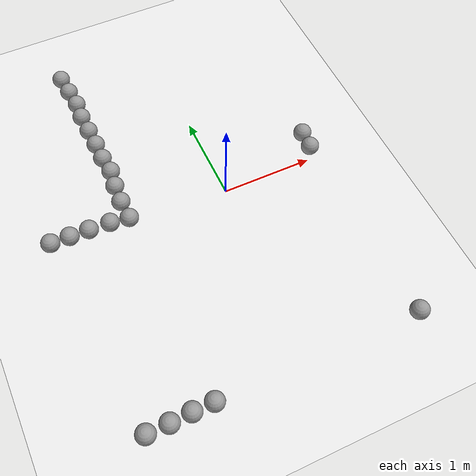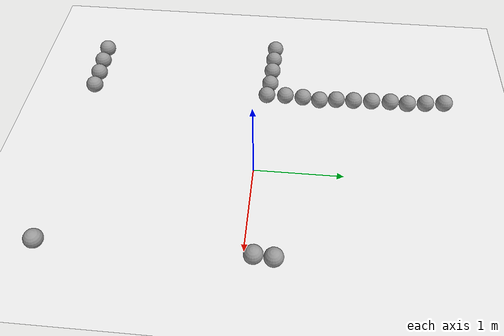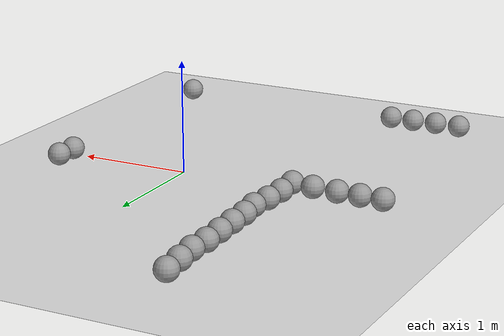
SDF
<sdf version="1.7">
 <world name="default">
  <model name="ground_plane">
   <static>1</static>
   <link name="link">
    <collision name="collision">
     <geometry><plane><normal>0 0 1</normal><size>100 100</size></plane></geometry>
     <surface>
      <contact><collide_bitmask>65535</collide_bitmask></contact>
      <friction><ode><mu>100</mu><mu2>50</mu2></ode></friction>
     </surface>
    </collision>
    <visual name="visual">
     <cast_shadows>0</cast_shadows>
     <geometry><plane><normal>0 0 1</normal><size>100 100</size></plane></geometry>
     <material>
      <script><uri>file://media/materials/scripts/gazebo.material</uri><name>Gazebo/White</name></script>
     </material>
    </visual>
   </link>
  </model>
  <model name="sphere_15">
   <link name="link_0">
    <inertial>
     <mass>1</mass>
     <inertia><ixx>0.1</ixx><ixy>0</ixy><ixz>0</ixz><iyy>0.1</iyy><iyz>0</iyz><izz>0.1</izz></inertia>
    </inertial>
    <visual name="visual">
     <geometry><sphere><radius>0.1</radius></sphere></geometry>
     <material>
      <lighting>1</lighting>
      <script><uri>file://media/materials/scripts/gazebo.material</uri><name>Gazebo/Grey</name></script>
      <shader type="pixel"><normal_map>__default__</normal_map></shader>
      <ambient>0.3 0.3 0.3 1</ambient>
      <diffuse>0.7 0.7 0.7 1</diffuse>
      <specular>0.01 0.01 0.01 1</specular>
      <emissive>0 0 0 1</emissive>
     </material>
    </visual>
    <collision name="collision">
     <geometry><sphere><radius>0.1</radius></sphere></geometry>
     <surface>
      <friction>
       <ode><mu>1</mu><mu2>1</mu2><fdir1>0 0 0</fdir1><slip1>0</slip1><slip2>0</slip2></ode>
       <torsional>
        <coefficient>1</coefficient>
        <patch_radius>0</patch_radius>
        <surface_radius>0</surface_radius>
        <use_patch_radius>1</use_patch_radius>
        <ode><slip>0</slip></ode>
       </torsional>
      </friction>
      <bounce><restitution_coefficient>0</restitution_coefficient><threshold>1e+06</threshold></bounce>
      <contact>
       <collide_without_contact>0</collide_without_contact>
       <collide_without_contact_bitmask>1</collide_without_contact_bitmask>
       <collide_bitmask>1</collide_bitmask>
       <ode>
        <soft_cfm>0</soft_cfm>
        <soft_erp>0.2</soft_erp>
        <kp>1e+13</kp>
        <kd>1</kd>
        <max_vel>0.01</max_vel>
        <min_depth>0</min_depth>
       </ode>
       <bullet>
        <split_impulse>1</split_impulse>
        <split_impulse_penetration_threshold>-0.01</split_impulse_penetration_threshold>
        <soft_cfm>0</soft_cfm>
        <soft_erp>0.2</soft_erp>
        <kp>1e+13</kp>
        <kd>1</kd>
       </bullet>
      </contact>
     </surface>
    </collision>
   </link>
   <static>0</static>
   <pose>-1.07546 -2.08235 0.1 -0.059386 0.004875 0.000548</pose>
  </model>
  <model name="sphere_16">
   <link name="link_0">
    <inertial>
     <mass>1</mass>
     <inertia><ixx>0.1</ixx><ixy>0</ixy><ixz>0</ixz><iyy>0.1</iyy><iyz>0</iyz><izz>0.1</izz></inertia>
    </inertial>
    <visual name="visual">
     <geometry><sphere><radius>0.1</radius></sphere></geometry>
     <material>
      <lighting>1</lighting>
      <script><uri>file://media/materials/scripts/gazebo.material</uri><name>Gazebo/Grey</name></script>
      <shader type="pixel"><normal_map>__default__</normal_map></shader>
      <ambient>0.3 0.3 0.3 1</ambient>
      <diffuse>0.7 0.7 0.7 1</diffuse>
      <specular>0.01 0.01 0.01 1</specular>
      <emissive>0 0 0 1</emissive>
     </material>
    </visual>
    <collision name="collision">
     <geometry><sphere><radius>0.1</radius></sphere></geometry>
     <surface>
      <friction>
       <ode><mu>1</mu><mu2>1</mu2><fdir1>0 0 0</fdir1><slip1>0</slip1><slip2>0</slip2></ode>
       <torsional>
        <coefficient>1</coefficient>
        <patch_radius>0</patch_radius>
        <surface_radius>0</surface_radius>
        <use_patch_radius>1</use_patch_radius>
        <ode><slip>0</slip></ode>
       </torsional>
      </friction>
      <bounce><restitution_coefficient>0</restitution_coefficient><threshold>1e+06</threshold></bounce>
      <contact>
       <collide_without_contact>0</collide_without_contact>
       <collide_without_contact_bitmask>1</collide_without_contact_bitmask>
       <collide_bitmask>1</collide_bitmask>
       <ode>
        <soft_cfm>0</soft_cfm>
        <soft_erp>0.2</soft_erp>
        <kp>1e+13</kp>
        <kd>1</kd>
        <max_vel>0.01</max_vel>
        <min_depth>0</min_depth>
       </ode>
       <bullet>
        <split_impulse>1</split_impulse>
        <split_impulse_penetration_threshold>-0.01</split_impulse_penetration_threshold>
        <soft_cfm>0</soft_cfm>
        <soft_erp>0.2</soft_erp>
        <kp>1e+13</kp>
        <kd>1</kd>
       </bullet>
      </contact>
     </surface>
    </collision>
   </link>
   <static>0</static>
   <pose>-1.29829 -2.0832 0.1 0 -0 0</pose>
  </model>
  <model name="sphere_17">
   <link name="link_0">
    <inertial>
     <mass>1</mass>
     <inertia><ixx>0.1</ixx><ixy>0</ixy><ixz>0</ixz><iyy>0.1</iyy><iyz>0</iyz><izz>0.1</izz></inertia>
    </inertial>
    <visual name="visual">
     <geometry><sphere><radius>0.1</radius></sphere></geometry>
     <material>
      <lighting>1</lighting>
      <script><uri>file://media/materials/scripts/gazebo.material</uri><name>Gazebo/Grey</name></script>
      <shader type="pixel"><normal_map>__default__</normal_map></shader>
      <ambient>0.3 0.3 0.3 1</ambient>
      <diffuse>0.7 0.7 0.7 1</diffuse>
      <specular>0.01 0.01 0.01 1</specular>
      <emissive>0 0 0 1</emissive>
     </material>
    </visual>
    <collision name="collision">
     <geometry><sphere><radius>0.1</radius></sphere></geometry>
     <surface>
      <friction>
       <ode><mu>1</mu><mu2>1</mu2><fdir1>0 0 0</fdir1><slip1>0</slip1><slip2>0</slip2></ode>
       <torsional>
        <coefficient>1</coefficient>
        <patch_radius>0</patch_radius>
        <surface_radius>0</surface_radius>
        <use_patch_radius>1</use_patch_radius>
        <ode><slip>0</slip></ode>
       </torsional>
      </friction>
      <bounce><restitution_coefficient>0</restitution_coefficient><threshold>1e+06</threshold></bounce>
      <contact>
       <collide_without_contact>0</collide_without_contact>
       <collide_without_contact_bitmask>1</collide_without_contact_bitmask>
       <collide_bitmask>1</collide_bitmask>
       <ode>
        <soft_cfm>0</soft_cfm>
        <soft_erp>0.2</soft_erp>
        <kp>1e+13</kp>
        <kd>1</kd>
        <max_vel>0.01</max_vel>
        <min_depth>0</min_depth>
       </ode>
       <bullet>
        <split_impulse>1</split_impulse>
        <split_impulse_penetration_threshold>-0.01</split_impulse_penetration_threshold>
        <soft_cfm>0</soft_cfm>
        <soft_erp>0.2</soft_erp>
        <kp>1e+13</kp>
        <kd>1</kd>
       </bullet>
      </contact>
     </surface>
    </collision>
   </link>
   <static>0</static>
   <pose>-1.52046 -2.09272 0.1 0 -0 0</pose>
  </model>
  <model name="sphere_18">
   <link name="link_0">
    <inertial>
     <mass>1</mass>
     <inertia><ixx>0.1</ixx><ixy>0</ixy><ixz>0</ixz><iyy>0.1</iyy><iyz>0</iyz><izz>0.1</izz></inertia>
    </inertial>
    <visual name="visual">
     <geometry><sphere><radius>0.1</radius></sphere></geometry>
     <material>
      <lighting>1</lighting>
      <script><uri>file://media/materials/scripts/gazebo.material</uri><name>Gazebo/Grey</name></script>
      <shader type="pixel"><normal_map>__default__</normal_map></shader>
      <ambient>0.3 0.3 0.3 1</ambient>
      <diffuse>0.7 0.7 0.7 1</diffuse>
      <specular>0.01 0.01 0.01 1</specular>
      <emissive>0 0 0 1</emissive>
     </material>
    </visual>
    <collision name="collision">
     <geometry><sphere><radius>0.1</radius></sphere></geometry>
     <surface>
      <friction>
       <ode><mu>1</mu><mu2>1</mu2><fdir1>0 0 0</fdir1><slip1>0</slip1><slip2>0</slip2></ode>
       <torsional>
        <coefficient>1</coefficient>
        <patch_radius>0</patch_radius>
        <surface_radius>0</surface_radius>
        <use_patch_radius>1</use_patch_radius>
        <ode><slip>0</slip></ode>
       </torsional>
      </friction>
      <bounce><restitution_coefficient>0</restitution_coefficient><threshold>1e+06</threshold></bounce>
      <contact>
       <collide_without_contact>0</collide_without_contact>
       <collide_without_contact_bitmask>1</collide_without_contact_bitmask>
       <collide_bitmask>1</collide_bitmask>
       <ode>
        <soft_cfm>0</soft_cfm>
        <soft_erp>0.2</soft_erp>
        <kp>1e+13</kp>
        <kd>1</kd>
        <max_vel>0.01</max_vel>
        <min_depth>0</min_depth>
       </ode>
       <bullet>
        <split_impulse>1</split_impulse>
        <split_impulse_penetration_threshold>-0.01</split_impulse_penetration_threshold>
        <soft_cfm>0</soft_cfm>
        <soft_erp>0.2</soft_erp>
        <kp>1e+13</kp>
        <kd>1</kd>
       </bullet>
      </contact>
     </surface>
    </collision>
   </link>
   <static>0</static>
   <pose>-1.75031 -2.09462 0.1 0 -0 0</pose>
  </model>
  <model name="sphere_33">
   <link name="link_0">
    <inertial>
     <mass>1</mass>
     <inertia><ixx>0.1</ixx><ixy>0</ixy><ixz>0</ixz><iyy>0.1</iyy><iyz>0</iyz><izz>0.1</izz></inertia>
    </inertial>
    <visual name="visual">
     <geometry><sphere><radius>0.1</radius></sphere></geometry>
     <material>
      <lighting>1</lighting>
      <script><uri>file://media/materials/scripts/gazebo.material</uri><name>Gazebo/Grey</name></script>
      <shader type="pixel"><normal_map>__default__</normal_map></shader>
      <ambient>0.3 0.3 0.3 1</ambient>
      <diffuse>0.7 0.7 0.7 1</diffuse>
      <specular>0.01 0.01 0.01 1</specular>
      <emissive>0 0 0 1</emissive>
     </material>
    </visual>
    <collision name="collision">
     <geometry><sphere><radius>0.1</radius></sphere></geometry>
     <surface>
      <friction>
       <ode><mu>1</mu><mu2>1</mu2><fdir1>0 0 0</fdir1><slip1>0</slip1><slip2>0</slip2></ode>
       <torsional>
        <coefficient>1</coefficient>
        <patch_radius>0</patch_radius>
        <surface_radius>0</surface_radius>
        <use_patch_radius>1</use_patch_radius>
        <ode><slip>0</slip></ode>
       </torsional>
      </friction>
      <bounce><restitution_coefficient>0</restitution_coefficient><threshold>1e+06</threshold></bounce>
      <contact>
       <collide_without_contact>0</collide_without_contact>
       <collide_without_contact_bitmask>1</collide_without_contact_bitmask>
       <collide_bitmask>1</collide_bitmask>
       <ode>
        <soft_cfm>0</soft_cfm>
        <soft_erp>0.2</soft_erp>
        <kp>1e+13</kp>
        <kd>1</kd>
        <max_vel>0.01</max_vel>
        <min_depth>0</min_depth>
       </ode>
       <bullet>
        <split_impulse>1</split_impulse>
        <split_impulse_penetration_threshold>-0.01</split_impulse_penetration_threshold>
        <soft_cfm>0</soft_cfm>
        <soft_erp>0.2</soft_erp>
        <kp>1e+13</kp>
        <kd>1</kd>
       </bullet>
      </contact>
     </surface>
    </collision>
   </link>
   <static>0</static>
   <pose>1.09596 -2.09176 0.1 -0.053944 -0.003381 -0.000948</pose>
  </model>
  <model name="sphere_62">
   <link name="link_0">
    <inertial>
     <mass>1</mass>
     <inertia><ixx>0.1</ixx><ixy>0</ixy><ixz>0</ixz><iyy>0.1</iyy><iyz>0</iyz><izz>0.1</izz></inertia>
    </inertial>
    <visual name="visual">
     <geometry><sphere><radius>0.1</radius></sphere></geometry>
     <material>
      <lighting>1</lighting>
      <script><uri>file://media/materials/scripts/gazebo.material</uri><name>Gazebo/Grey</name></script>
      <shader type="pixel"><normal_map>__default__</normal_map></shader>
      <ambient>0.3 0.3 0.3 1</ambient>
      <diffuse>0.7 0.7 0.7 1</diffuse>
      <specular>0.01 0.01 0.01 1</specular>
      <emissive>0 0 0 1</emissive>
     </material>
    </visual>
    <collision name="collision">
     <geometry><sphere><radius>0.1</radius></sphere></geometry>
     <surface>
      <friction>
       <ode><mu>1</mu><mu2>1</mu2><fdir1>0 0 0</fdir1><slip1>0</slip1><slip2>0</slip2></ode>
       <torsional>
        <coefficient>1</coefficient>
        <patch_radius>0</patch_radius>
        <surface_radius>0</surface_radius>
        <use_patch_radius>1</use_patch_radius>
        <ode><slip>0</slip></ode>
       </torsional>
      </friction>
      <bounce><restitution_coefficient>0</restitution_coefficient><threshold>1e+06</threshold></bounce>
      <contact>
       <collide_without_contact>0</collide_without_contact>
       <collide_without_contact_bitmask>1</collide_without_contact_bitmask>
       <collide_bitmask>1</collide_bitmask>
       <ode>
        <soft_cfm>0</soft_cfm>
        <soft_erp>0.2</soft_erp>
        <kp>1e+13</kp>
        <kd>1</kd>
        <max_vel>0.01</max_vel>
        <min_depth>0</min_depth>
       </ode>
       <bullet>
        <split_impulse>1</split_impulse>
        <split_impulse_penetration_threshold>-0.01</split_impulse_penetration_threshold>
        <soft_cfm>0</soft_cfm>
        <soft_erp>0.2</soft_erp>
        <kp>1e+13</kp>
        <kd>1</kd>
       </bullet>
      </contact>
     </surface>
    </collision>
   </link>
   <static>0</static>
   <pose>1.07641 0.101942 0.1 0 -0 0</pose>
  </model>
  <model name="sphere_74">
   <link name="link_0">
    <inertial>
     <mass>1</mass>
     <inertia><ixx>0.1</ixx><ixy>0</ixy><ixz>0</ixz><iyy>0.1</iyy><iyz>0</iyz><izz>0.1</izz></inertia>
    </inertial>
    <visual name="visual">
     <geometry><sphere><radius>0.1</radius></sphere></geometry>
     <material>
      <lighting>1</lighting>
      <script><uri>file://media/materials/scripts/gazebo.material</uri><name>Gazebo/Grey</name></script>
      <shader type="pixel"><normal_map>__default__</normal_map></shader>
      <ambient>0.3 0.3 0.3 1</ambient>
      <diffuse>0.7 0.7 0.7 1</diffuse>
      <specular>0.01 0.01 0.01 1</specular>
      <emissive>0 0 0 1</emissive>
     </material>
    </visual>
    <collision name="collision">
     <geometry><sphere><radius>0.1</radius></sphere></geometry>
     <surface>
      <friction>
       <ode><mu>1</mu><mu2>1</mu2><fdir1>0 0 0</fdir1><slip1>0</slip1><slip2>0</slip2></ode>
       <torsional>
        <coefficient>1</coefficient>
        <patch_radius>0</patch_radius>
        <surface_radius>0</surface_radius>
        <use_patch_radius>1</use_patch_radius>
        <ode><slip>0</slip></ode>
       </torsional>
      </friction>
      <bounce><restitution_coefficient>0</restitution_coefficient><threshold>1e+06</threshold></bounce>
      <contact>
       <collide_without_contact>0</collide_without_contact>
       <collide_without_contact_bitmask>1</collide_without_contact_bitmask>
       <collide_bitmask>1</collide_bitmask>
       <ode>
        <soft_cfm>0</soft_cfm>
        <soft_erp>0.2</soft_erp>
        <kp>1e+13</kp>
        <kd>1</kd>
        <max_vel>0.01</max_vel>
        <min_depth>0</min_depth>
       </ode>
       <bullet>
        <split_impulse>1</split_impulse>
        <split_impulse_penetration_threshold>-0.01</split_impulse_penetration_threshold>
        <soft_cfm>0</soft_cfm>
        <soft_erp>0.2</soft_erp>
        <kp>1e+13</kp>
        <kd>1</kd>
       </bullet>
      </contact>
     </surface>
    </collision>
   </link>
   <static>0</static>
   <pose>1.08893 0.304027 0.1 0.017206 -0.001011 -0.000165</pose>
  </model>
  <model name="sphere_85">
   <link name="link_0">
    <inertial>
     <mass>1</mass>
     <inertia><ixx>0.1</ixx><ixy>0</ixy><ixz>0</ixz><iyy>0.1</iyy><iyz>0</iyz><izz>0.1</izz></inertia>
    </inertial>
    <visual name="visual">
     <geometry><sphere><radius>0.1</radius></sphere></geometry>
     <material>
      <lighting>1</lighting>
      <script><uri>file://media/materials/scripts/gazebo.material</uri><name>Gazebo/Grey</name></script>
      <shader type="pixel"><normal_map>__default__</normal_map></shader>
      <ambient>0.3 0.3 0.3 1</ambient>
      <diffuse>0.7 0.7 0.7 1</diffuse>
      <specular>0.01 0.01 0.01 1</specular>
      <emissive>0 0 0 1</emissive>
     </material>
    </visual>
    <collision name="collision">
     <geometry><sphere><radius>0.1</radius></sphere></geometry>
     <surface>
      <friction>
       <ode><mu>1</mu><mu2>1</mu2><fdir1>0 0 0</fdir1><slip1>0</slip1><slip2>0</slip2></ode>
       <torsional>
        <coefficient>1</coefficient>
        <patch_radius>0</patch_radius>
        <surface_radius>0</surface_radius>
        <use_patch_radius>1</use_patch_radius>
        <ode><slip>0</slip></ode>
       </torsional>
      </friction>
      <bounce><restitution_coefficient>0</restitution_coefficient><threshold>1e+06</threshold></bounce>
      <contact>
       <collide_without_contact>0</collide_without_contact>
       <collide_without_contact_bitmask>1</collide_without_contact_bitmask>
       <collide_bitmask>1</collide_bitmask>
       <ode>
        <soft_cfm>0</soft_cfm>
        <soft_erp>0.2</soft_erp>
        <kp>1e+13</kp>
        <kd>1</kd>
        <max_vel>0.01</max_vel>
        <min_depth>0</min_depth>
       </ode>
       <bullet>
        <split_impulse>1</split_impulse>
        <split_impulse_penetration_threshold>-0.01</split_impulse_penetration_threshold>
        <soft_cfm>0</soft_cfm>
        <soft_erp>0.2</soft_erp>
        <kp>1e+13</kp>
        <kd>1</kd>
       </bullet>
      </contact>
     </surface>
    </collision>
   </link>
   <static>0</static>
   <pose>-1.08222 0.064075 0.1 0.005987 0.035998 0.001365</pose>
  </model>
  <model name="sphere_86">
   <link name="link_0">
    <inertial>
     <mass>1</mass>
     <inertia><ixx>0.1</ixx><ixy>0</ixy><ixz>0</ixz><iyy>0.1</iyy><iyz>0</iyz><izz>0.1</izz></inertia>
    </inertial>
    <visual name="visual">
     <geometry><sphere><radius>0.1</radius></sphere></geometry>
     <material>
      <lighting>1</lighting>
      <script><uri>file://media/materials/scripts/gazebo.material</uri><name>Gazebo/Grey</name></script>
      <shader type="pixel"><normal_map>__default__</normal_map></shader>
      <ambient>0.3 0.3 0.3 1</ambient>
      <diffuse>0.7 0.7 0.7 1</diffuse>
      <specular>0.01 0.01 0.01 1</specular>
      <emissive>0 0 0 1</emissive>
     </material>
    </visual>
    <collision name="collision">
     <geometry><sphere><radius>0.1</radius></sphere></geometry>
     <surface>
      <friction>
       <ode><mu>1</mu><mu2>1</mu2><fdir1>0 0 0</fdir1><slip1>0</slip1><slip2>0</slip2></ode>
       <torsional>
        <coefficient>1</coefficient>
        <patch_radius>0</patch_radius>
        <surface_radius>0</surface_radius>
        <use_patch_radius>1</use_patch_radius>
        <ode><slip>0</slip></ode>
       </torsional>
      </friction>
      <bounce><restitution_coefficient>0</restitution_coefficient><threshold>1e+06</threshold></bounce>
      <contact>
       <collide_without_contact>0</collide_without_contact>
       <collide_without_contact_bitmask>1</collide_without_contact_bitmask>
       <collide_bitmask>1</collide_bitmask>
       <ode>
        <soft_cfm>0</soft_cfm>
        <soft_erp>0.2</soft_erp>
        <kp>1e+13</kp>
        <kd>1</kd>
        <max_vel>0.01</max_vel>
        <min_depth>0</min_depth>
       </ode>
       <bullet>
        <split_impulse>1</split_impulse>
        <split_impulse_penetration_threshold>-0.01</split_impulse_penetration_threshold>
        <soft_cfm>0</soft_cfm>
        <soft_erp>0.2</soft_erp>
        <kp>1e+13</kp>
        <kd>1</kd>
       </bullet>
      </contact>
     </surface>
    </collision>
   </link>
   <static>0</static>
   <pose>-1.28551 0.091382 0.1 -0.006611 -0.040727 0.001393</pose>
  </model>
  <model name="sphere_87">
   <link name="link_0">
    <inertial>
     <mass>1</mass>
     <inertia><ixx>0.1</ixx><ixy>0</ixy><ixz>0</ixz><iyy>0.1</iyy><iyz>0</iyz><izz>0.1</izz></inertia>
    </inertial>
    <visual name="visual">
     <geometry><sphere><radius>0.1</radius></sphere></geometry>
     <material>
      <lighting>1</lighting>
      <script><uri>file://media/materials/scripts/gazebo.material</uri><name>Gazebo/Grey</name></script>
      <shader type="pixel"><normal_map>__default__</normal_map></shader>
      <ambient>0.3 0.3 0.3 1</ambient>
      <diffuse>0.7 0.7 0.7 1</diffuse>
      <specular>0.01 0.01 0.01 1</specular>
      <emissive>0 0 0 1</emissive>
     </material>
    </visual>
    <collision name="collision">
     <geometry><sphere><radius>0.1</radius></sphere></geometry>
     <surface>
      <friction>
       <ode><mu>1</mu><mu2>1</mu2><fdir1>0 0 0</fdir1><slip1>0</slip1><slip2>0</slip2></ode>
       <torsional>
        <coefficient>1</coefficient>
        <patch_radius>0</patch_radius>
        <surface_radius>0</surface_radius>
        <use_patch_radius>1</use_patch_radius>
        <ode><slip>0</slip></ode>
       </torsional>
      </friction>
      <bounce><restitution_coefficient>0</restitution_coefficient><threshold>1e+06</threshold></bounce>
      <contact>
       <collide_without_contact>0</collide_without_contact>
       <collide_without_contact_bitmask>1</collide_without_contact_bitmask>
       <collide_bitmask>1</collide_bitmask>
       <ode>
        <soft_cfm>0</soft_cfm>
        <soft_erp>0.2</soft_erp>
        <kp>1e+13</kp>
        <kd>1</kd>
        <max_vel>0.01</max_vel>
        <min_depth>0</min_depth>
       </ode>
       <bullet>
        <split_impulse>1</split_impulse>
        <split_impulse_penetration_threshold>-0.01</split_impulse_penetration_threshold>
        <soft_cfm>0</soft_cfm>
        <soft_erp>0.2</soft_erp>
        <kp>1e+13</kp>
        <kd>1</kd>
       </bullet>
      </contact>
     </surface>
    </collision>
   </link>
   <static>0</static>
   <pose>-1.51169 0.101938 0.1 0 -0 0</pose>
  </model>
  <model name="sphere_88">
   <link name="link_0">
    <inertial>
     <mass>1</mass>
     <inertia><ixx>0.1</ixx><ixy>0</ixy><ixz>0</ixz><iyy>0.1</iyy><iyz>0</iyz><izz>0.1</izz></inertia>
    </inertial>
    <visual name="visual">
     <geometry><sphere><radius>0.1</radius></sphere></geometry>
     <material>
      <lighting>1</lighting>
      <script><uri>file://media/materials/scripts/gazebo.material</uri><name>Gazebo/Grey</name></script>
      <shader type="pixel"><normal_map>__default__</normal_map></shader>
      <ambient>0.3 0.3 0.3 1</ambient>
      <diffuse>0.7 0.7 0.7 1</diffuse>
      <specular>0.01 0.01 0.01 1</specular>
      <emissive>0 0 0 1</emissive>
     </material>
    </visual>
    <collision name="collision">
     <geometry><sphere><radius>0.1</radius></sphere></geometry>
     <surface>
      <friction>
       <ode><mu>1</mu><mu2>1</mu2><fdir1>0 0 0</fdir1><slip1>0</slip1><slip2>0</slip2></ode>
       <torsional>
        <coefficient>1</coefficient>
        <patch_radius>0</patch_radius>
        <surface_radius>0</surface_radius>
        <use_patch_radius>1</use_patch_radius>
        <ode><slip>0</slip></ode>
       </torsional>
      </friction>
      <bounce><restitution_coefficient>0</restitution_coefficient><threshold>1e+06</threshold></bounce>
      <contact>
       <collide_without_contact>0</collide_without_contact>
       <collide_without_contact_bitmask>1</collide_without_contact_bitmask>
       <collide_bitmask>1</collide_bitmask>
       <ode>
        <soft_cfm>0</soft_cfm>
        <soft_erp>0.2</soft_erp>
        <kp>1e+13</kp>
        <kd>1</kd>
        <max_vel>0.01</max_vel>
        <min_depth>0</min_depth>
       </ode>
       <bullet>
        <split_impulse>1</split_impulse>
        <split_impulse_penetration_threshold>-0.01</split_impulse_penetration_threshold>
        <soft_cfm>0</soft_cfm>
        <soft_erp>0.2</soft_erp>
        <kp>1e+13</kp>
        <kd>1</kd>
       </bullet>
      </contact>
     </surface>
    </collision>
   </link>
   <static>0</static>
   <pose>-1.71901 0.106668 0.1 0.00104 0.032357 0.00026</pose>
  </model>
  <model name="sphere_89">
   <link name="link_0">
    <inertial>
     <mass>1</mass>
     <inertia><ixx>0.1</ixx><ixy>0</ixy><ixz>0</ixz><iyy>0.1</iyy><iyz>0</iyz><izz>0.1</izz></inertia>
    </inertial>
    <visual name="visual">
     <geometry><sphere><radius>0.1</radius></sphere></geometry>
     <material>
      <lighting>1</lighting>
      <script><uri>file://media/materials/scripts/gazebo.material</uri><name>Gazebo/Grey</name></script>
      <shader type="pixel"><normal_map>__default__</normal_map></shader>
      <ambient>0.3 0.3 0.3 1</ambient>
      <diffuse>0.7 0.7 0.7 1</diffuse>
      <specular>0.01 0.01 0.01 1</specular>
      <emissive>0 0 0 1</emissive>
     </material>
    </visual>
    <collision name="collision">
     <geometry><sphere><radius>0.1</radius></sphere></geometry>
     <surface>
      <friction>
       <ode><mu>1</mu><mu2>1</mu2><fdir1>0 0 0</fdir1><slip1>0</slip1><slip2>0</slip2></ode>
       <torsional>
        <coefficient>1</coefficient>
        <patch_radius>0</patch_radius>
        <surface_radius>0</surface_radius>
        <use_patch_radius>1</use_patch_radius>
        <ode><slip>0</slip></ode>
       </torsional>
      </friction>
      <bounce><restitution_coefficient>0</restitution_coefficient><threshold>1e+06</threshold></bounce>
      <contact>
       <collide_without_contact>0</collide_without_contact>
       <collide_without_contact_bitmask>1</collide_without_contact_bitmask>
       <collide_bitmask>1</collide_bitmask>
       <ode>
        <soft_cfm>0</soft_cfm>
        <soft_erp>0.2</soft_erp>
        <kp>1e+13</kp>
        <kd>1</kd>
        <max_vel>0.01</max_vel>
        <min_depth>0</min_depth>
       </ode>
       <bullet>
        <split_impulse>1</split_impulse>
        <split_impulse_penetration_threshold>-0.01</split_impulse_penetration_threshold>
        <soft_cfm>0</soft_cfm>
        <soft_erp>0.2</soft_erp>
        <kp>1e+13</kp>
        <kd>1</kd>
       </bullet>
      </contact>
     </surface>
    </collision>
   </link>
   <static>0</static>
   <pose>-1.924 0.111839 0.1 -0.001156 -0.037218 0.000265</pose>
  </model>
  <model name="sphere_102">
   <link name="link_0">
    <inertial>
     <mass>1</mass>
     <inertia><ixx>0.1</ixx><ixy>0</ixy><ixz>0</ixz><iyy>0.1</iyy><iyz>0</iyz><izz>0.1</izz></inertia>
    </inertial>
    <visual name="visual">
     <geometry><sphere><radius>0.1</radius></sphere></geometry>
     <material>
      <lighting>1</lighting>
      <script><uri>file://media/materials/scripts/gazebo.material</uri><name>Gazebo/Grey</name></script>
      <shader type="pixel"><normal_map>__default__</normal_map></shader>
      <ambient>0.3 0.3 0.3 1</ambient>
      <diffuse>0.7 0.7 0.7 1</diffuse>
      <specular>0.01 0.01 0.01 1</specular>
      <emissive>0 0 0 1</emissive>
     </material>
    </visual>
    <collision name="collision">
     <geometry><sphere><radius>0.1</radius></sphere></geometry>
     <surface>
      <friction>
       <ode><mu>1</mu><mu2>1</mu2><fdir1>0 0 0</fdir1><slip1>0</slip1><slip2>0</slip2></ode>
       <torsional>
        <coefficient>1</coefficient>
        <patch_radius>0</patch_radius>
        <surface_radius>0</surface_radius>
        <use_patch_radius>1</use_patch_radius>
        <ode><slip>0</slip></ode>
       </torsional>
      </friction>
      <bounce><restitution_coefficient>0</restitution_coefficient><threshold>1e+06</threshold></bounce>
      <contact>
       <collide_without_contact>0</collide_without_contact>
       <collide_without_contact_bitmask>1</collide_without_contact_bitmask>
       <collide_bitmask>1</collide_bitmask>
       <ode>
        <soft_cfm>0</soft_cfm>
        <soft_erp>0.2</soft_erp>
        <kp>1e+13</kp>
        <kd>1</kd>
        <max_vel>0.01</max_vel>
        <min_depth>0</min_depth>
       </ode>
       <bullet>
        <split_impulse>1</split_impulse>
        <split_impulse_penetration_threshold>-0.01</split_impulse_penetration_threshold>
        <soft_cfm>0</soft_cfm>
        <soft_erp>0.2</soft_erp>
        <kp>1e+13</kp>
        <kd>1</kd>
       </bullet>
      </contact>
     </surface>
    </collision>
   </link>
   <static>0</static>
   <pose>-1.0919 0.289728 0.1 0 -0 0</pose>
  </model>
  <model name="sphere_103">
   <link name="link_0">
    <inertial>
     <mass>1</mass>
     <inertia><ixx>0.1</ixx><ixy>0</ixy><ixz>0</ixz><iyy>0.1</iyy><iyz>0</iyz><izz>0.1</izz></inertia>
    </inertial>
    <visual name="visual">
     <geometry><sphere><radius>0.1</radius></sphere></geometry>
     <material>
      <lighting>1</lighting>
      <script><uri>file://media/materials/scripts/gazebo.material</uri><name>Gazebo/Grey</name></script>
      <shader type="pixel"><normal_map>__default__</normal_map></shader>
      <ambient>0.3 0.3 0.3 1</ambient>
      <diffuse>0.7 0.7 0.7 1</diffuse>
      <specular>0.01 0.01 0.01 1</specular>
      <emissive>0 0 0 1</emissive>
     </material>
    </visual>
    <collision name="collision">
     <geometry><sphere><radius>0.1</radius></sphere></geometry>
     <surface>
      <friction>
       <ode><mu>1</mu><mu2>1</mu2><fdir1>0 0 0</fdir1><slip1>0</slip1><slip2>0</slip2></ode>
       <torsional>
        <coefficient>1</coefficient>
        <patch_radius>0</patch_radius>
        <surface_radius>0</surface_radius>
        <use_patch_radius>1</use_patch_radius>
        <ode><slip>0</slip></ode>
       </torsional>
      </friction>
      <bounce><restitution_coefficient>0</restitution_coefficient><threshold>1e+06</threshold></bounce>
      <contact>
       <collide_without_contact>0</collide_without_contact>
       <collide_without_contact_bitmask>1</collide_without_contact_bitmask>
       <collide_bitmask>1</collide_bitmask>
       <ode>
        <soft_cfm>0</soft_cfm>
        <soft_erp>0.2</soft_erp>
        <kp>1e+13</kp>
        <kd>1</kd>
        <max_vel>0.01</max_vel>
        <min_depth>0</min_depth>
       </ode>
       <bullet>
        <split_impulse>1</split_impulse>
        <split_impulse_penetration_threshold>-0.01</split_impulse_penetration_threshold>
        <soft_cfm>0</soft_cfm>
        <soft_erp>0.2</soft_erp>
        <kp>1e+13</kp>
        <kd>1</kd>
       </bullet>
      </contact>
     </surface>
    </collision>
   </link>
   <static>0</static>
   <pose>-1.08088 0.503996 0.1 0.074779 -0.002407 -0.007849</pose>
  </model>
  <model name="sphere_104">
   <link name="link_0">
    <inertial>
     <mass>1</mass>
     <inertia><ixx>0.1</ixx><ixy>0</ixy><ixz>0</ixz><iyy>0.1</iyy><iyz>0</iyz><izz>0.1</izz></inertia>
    </inertial>
    <visual name="visual">
     <geometry><sphere><radius>0.1</radius></sphere></geometry>
     <material>
      <lighting>1</lighting>
      <script><uri>file://media/materials/scripts/gazebo.material</uri><name>Gazebo/Grey</name></script>
      <shader type="pixel"><normal_map>__default__</normal_map></shader>
      <ambient>0.3 0.3 0.3 1</ambient>
      <diffuse>0.7 0.7 0.7 1</diffuse>
      <specular>0.01 0.01 0.01 1</specular>
      <emissive>0 0 0 1</emissive>
     </material>
    </visual>
    <collision name="collision">
     <geometry><sphere><radius>0.1</radius></sphere></geometry>
     <surface>
      <friction>
       <ode><mu>1</mu><mu2>1</mu2><fdir1>0 0 0</fdir1><slip1>0</slip1><slip2>0</slip2></ode>
       <torsional>
        <coefficient>1</coefficient>
        <patch_radius>0</patch_radius>
        <surface_radius>0</surface_radius>
        <use_patch_radius>1</use_patch_radius>
        <ode><slip>0</slip></ode>
       </torsional>
      </friction>
      <bounce><restitution_coefficient>0</restitution_coefficient><threshold>1e+06</threshold></bounce>
      <contact>
       <collide_without_contact>0</collide_without_contact>
       <collide_without_contact_bitmask>1</collide_without_contact_bitmask>
       <collide_bitmask>1</collide_bitmask>
       <ode>
        <soft_cfm>0</soft_cfm>
        <soft_erp>0.2</soft_erp>
        <kp>1e+13</kp>
        <kd>1</kd>
        <max_vel>0.01</max_vel>
        <min_depth>0</min_depth>
       </ode>
       <bullet>
        <split_impulse>1</split_impulse>
        <split_impulse_penetration_threshold>-0.01</split_impulse_penetration_threshold>
        <soft_cfm>0</soft_cfm>
        <soft_erp>0.2</soft_erp>
        <kp>1e+13</kp>
        <kd>1</kd>
       </bullet>
      </contact>
     </surface>
    </collision>
   </link>
   <static>0</static>
   <pose>-1.0546 0.705935 0.1 -0.009174 0.012827 0.001698</pose>
  </model>
  <model name="sphere_105">
   <link name="link_0">
    <inertial>
     <mass>1</mass>
     <inertia><ixx>0.1</ixx><ixy>0</ixy><ixz>0</ixz><iyy>0.1</iyy><iyz>0</iyz><izz>0.1</izz></inertia>
    </inertial>
    <visual name="visual">
     <geometry><sphere><radius>0.1</radius></sphere></geometry>
     <material>
      <lighting>1</lighting>
      <script><uri>file://media/materials/scripts/gazebo.material</uri><name>Gazebo/Grey</name></script>
      <shader type="pixel"><normal_map>__default__</normal_map></shader>
      <ambient>0.3 0.3 0.3 1</ambient>
      <diffuse>0.7 0.7 0.7 1</diffuse>
      <specular>0.01 0.01 0.01 1</specular>
      <emissive>0 0 0 1</emissive>
     </material>
    </visual>
    <collision name="collision">
     <geometry><sphere><radius>0.1</radius></sphere></geometry>
     <surface>
      <friction>
       <ode><mu>1</mu><mu2>1</mu2><fdir1>0 0 0</fdir1><slip1>0</slip1><slip2>0</slip2></ode>
       <torsional>
        <coefficient>1</coefficient>
        <patch_radius>0</patch_radius>
        <surface_radius>0</surface_radius>
        <use_patch_radius>1</use_patch_radius>
        <ode><slip>0</slip></ode>
       </torsional>
      </friction>
      <bounce><restitution_coefficient>0</restitution_coefficient><threshold>1e+06</threshold></bounce>
      <contact>
       <collide_without_contact>0</collide_without_contact>
       <collide_without_contact_bitmask>1</collide_without_contact_bitmask>
       <collide_bitmask>1</collide_bitmask>
       <ode>
        <soft_cfm>0</soft_cfm>
        <soft_erp>0.2</soft_erp>
        <kp>1e+13</kp>
        <kd>1</kd>
        <max_vel>0.01</max_vel>
        <min_depth>0</min_depth>
       </ode>
       <bullet>
        <split_impulse>1</split_impulse>
        <split_impulse_penetration_threshold>-0.01</split_impulse_penetration_threshold>
        <soft_cfm>0</soft_cfm>
        <soft_erp>0.2</soft_erp>
        <kp>1e+13</kp>
        <kd>1</kd>
       </bullet>
      </contact>
     </surface>
    </collision>
   </link>
   <static>0</static>
   <pose>-1.07724 0.908326 0.1 -0.055259 0.002793 0.00933</pose>
  </model>
  <model name="sphere_106">
   <link name="link_0">
    <inertial>
     <mass>1</mass>
     <inertia><ixx>0.1</ixx><ixy>0</ixy><ixz>0</ixz><iyy>0.1</iyy><iyz>0</iyz><izz>0.1</izz></inertia>
    </inertial>
    <visual name="visual">
     <geometry><sphere><radius>0.1</radius></sphere></geometry>
     <material>
      <lighting>1</lighting>
      <script><uri>file://media/materials/scripts/gazebo.material</uri><name>Gazebo/Grey</name></script>
      <shader type="pixel"><normal_map>__default__</normal_map></shader>
      <ambient>0.3 0.3 0.3 1</ambient>
      <diffuse>0.7 0.7 0.7 1</diffuse>
      <specular>0.01 0.01 0.01 1</specular>
      <emissive>0 0 0 1</emissive>
     </material>
    </visual>
    <collision name="collision">
     <geometry><sphere><radius>0.1</radius></sphere></geometry>
     <surface>
      <friction>
       <ode><mu>1</mu><mu2>1</mu2><fdir1>0 0 0</fdir1><slip1>0</slip1><slip2>0</slip2></ode>
       <torsional>
        <coefficient>1</coefficient>
        <patch_radius>0</patch_radius>
        <surface_radius>0</surface_radius>
        <use_patch_radius>1</use_patch_radius>
        <ode><slip>0</slip></ode>
       </torsional>
      </friction>
      <bounce><restitution_coefficient>0</restitution_coefficient><threshold>1e+06</threshold></bounce>
      <contact>
       <collide_without_contact>0</collide_without_contact>
       <collide_without_contact_bitmask>1</collide_without_contact_bitmask>
       <collide_bitmask>1</collide_bitmask>
       <ode>
        <soft_cfm>0</soft_cfm>
        <soft_erp>0.2</soft_erp>
        <kp>1e+13</kp>
        <kd>1</kd>
        <max_vel>0.01</max_vel>
        <min_depth>0</min_depth>
       </ode>
       <bullet>
        <split_impulse>1</split_impulse>
        <split_impulse_penetration_threshold>-0.01</split_impulse_penetration_threshold>
        <soft_cfm>0</soft_cfm>
        <soft_erp>0.2</soft_erp>
        <kp>1e+13</kp>
        <kd>1</kd>
       </bullet>
      </contact>
     </surface>
    </collision>
   </link>
   <static>0</static>
   <pose>-1.08076 1.1176 0.1 0 -0 0</pose>
  </model>
  <model name="sphere_107">
   <link name="link_0">
    <inertial>
     <mass>1</mass>
     <inertia><ixx>0.1</ixx><ixy>0</ixy><ixz>0</ixz><iyy>0.1</iyy><iyz>0</iyz><izz>0.1</izz></inertia>
    </inertial>
    <visual name="visual">
     <geometry><sphere><radius>0.1</radius></sphere></geometry>
     <material>
      <lighting>1</lighting>
      <script><uri>file://media/materials/scripts/gazebo.material</uri><name>Gazebo/Grey</name></script>
      <shader type="pixel"><normal_map>__default__</normal_map></shader>
      <ambient>0.3 0.3 0.3 1</ambient>
      <diffuse>0.7 0.7 0.7 1</diffuse>
      <specular>0.01 0.01 0.01 1</specular>
      <emissive>0 0 0 1</emissive>
     </material>
    </visual>
    <collision name="collision">
     <geometry><sphere><radius>0.1</radius></sphere></geometry>
     <surface>
      <friction>
       <ode><mu>1</mu><mu2>1</mu2><fdir1>0 0 0</fdir1><slip1>0</slip1><slip2>0</slip2></ode>
       <torsional>
        <coefficient>1</coefficient>
        <patch_radius>0</patch_radius>
        <surface_radius>0</surface_radius>
        <use_patch_radius>1</use_patch_radius>
        <ode><slip>0</slip></ode>
       </torsional>
      </friction>
      <bounce><restitution_coefficient>0</restitution_coefficient><threshold>1e+06</threshold></bounce>
      <contact>
       <collide_without_contact>0</collide_without_contact>
       <collide_without_contact_bitmask>1</collide_without_contact_bitmask>
       <collide_bitmask>1</collide_bitmask>
       <ode>
        <soft_cfm>0</soft_cfm>
        <soft_erp>0.2</soft_erp>
        <kp>1e+13</kp>
        <kd>1</kd>
        <max_vel>0.01</max_vel>
        <min_depth>0</min_depth>
       </ode>
       <bullet>
        <split_impulse>1</split_impulse>
        <split_impulse_penetration_threshold>-0.01</split_impulse_penetration_threshold>
        <soft_cfm>0</soft_cfm>
        <soft_erp>0.2</soft_erp>
        <kp>1e+13</kp>
        <kd>1</kd>
       </bullet>
      </contact>
     </surface>
    </collision>
   </link>
   <static>0</static>
   <pose>-1.08919 1.33466 0.1 0 -0 0</pose>
  </model>
  <model name="sphere_108">
   <link name="link_0">
    <inertial>
     <mass>1</mass>
     <inertia><ixx>0.1</ixx><ixy>0</ixy><ixz>0</ixz><iyy>0.1</iyy><iyz>0</iyz><izz>0.1</izz></inertia>
    </inertial>
    <visual name="visual">
     <geometry><sphere><radius>0.1</radius></sphere></geometry>
     <material>
      <lighting>1</lighting>
      <script><uri>file://media/materials/scripts/gazebo.material</uri><name>Gazebo/Grey</name></script>
      <shader type="pixel"><normal_map>__default__</normal_map></shader>
      <ambient>0.3 0.3 0.3 1</ambient>
      <diffuse>0.7 0.7 0.7 1</diffuse>
      <specular>0.01 0.01 0.01 1</specular>
      <emissive>0 0 0 1</emissive>
     </material>
    </visual>
    <collision name="collision">
     <geometry><sphere><radius>0.1</radius></sphere></geometry>
     <surface>
      <friction>
       <ode><mu>1</mu><mu2>1</mu2><fdir1>0 0 0</fdir1><slip1>0</slip1><slip2>0</slip2></ode>
       <torsional>
        <coefficient>1</coefficient>
        <patch_radius>0</patch_radius>
        <surface_radius>0</surface_radius>
        <use_patch_radius>1</use_patch_radius>
        <ode><slip>0</slip></ode>
       </torsional>
      </friction>
      <bounce><restitution_coefficient>0</restitution_coefficient><threshold>1e+06</threshold></bounce>
      <contact>
       <collide_without_contact>0</collide_without_contact>
       <collide_without_contact_bitmask>1</collide_without_contact_bitmask>
       <collide_bitmask>1</collide_bitmask>
       <ode>
        <soft_cfm>0</soft_cfm>
        <soft_erp>0.2</soft_erp>
        <kp>1e+13</kp>
        <kd>1</kd>
        <max_vel>0.01</max_vel>
        <min_depth>0</min_depth>
       </ode>
       <bullet>
        <split_impulse>1</split_impulse>
        <split_impulse_penetration_threshold>-0.01</split_impulse_penetration_threshold>
        <soft_cfm>0</soft_cfm>
        <soft_erp>0.2</soft_erp>
        <kp>1e+13</kp>
        <kd>1</kd>
       </bullet>
      </contact>
     </surface>
    </collision>
   </link>
   <static>0</static>
   <pose>-1.09769 1.55824 0.1 0 -0 0</pose>
  </model>
  <model name="sphere_109">
   <link name="link_0">
    <inertial>
     <mass>1</mass>
     <inertia><ixx>0.1</ixx><ixy>0</ixy><ixz>0</ixz><iyy>0.1</iyy><iyz>0</iyz><izz>0.1</izz></inertia>
    </inertial>
    <visual name="visual">
     <geometry><sphere><radius>0.1</radius></sphere></geometry>
     <material>
      <lighting>1</lighting>
      <script><uri>file://media/materials/scripts/gazebo.material</uri><name>Gazebo/Grey</name></script>
      <shader type="pixel"><normal_map>__default__</normal_map></shader>
      <ambient>0.3 0.3 0.3 1</ambient>
      <diffuse>0.7 0.7 0.7 1</diffuse>
      <specular>0.01 0.01 0.01 1</specular>
      <emissive>0 0 0 1</emissive>
     </material>
    </visual>
    <collision name="collision">
     <geometry><sphere><radius>0.1</radius></sphere></geometry>
     <surface>
      <friction>
       <ode><mu>1</mu><mu2>1</mu2><fdir1>0 0 0</fdir1><slip1>0</slip1><slip2>0</slip2></ode>
       <torsional>
        <coefficient>1</coefficient>
        <patch_radius>0</patch_radius>
        <surface_radius>0</surface_radius>
        <use_patch_radius>1</use_patch_radius>
        <ode><slip>0</slip></ode>
       </torsional>
      </friction>
      <bounce><restitution_coefficient>0</restitution_coefficient><threshold>1e+06</threshold></bounce>
      <contact>
       <collide_without_contact>0</collide_without_contact>
       <collide_without_contact_bitmask>1</collide_without_contact_bitmask>
       <collide_bitmask>1</collide_bitmask>
       <ode>
        <soft_cfm>0</soft_cfm>
        <soft_erp>0.2</soft_erp>
        <kp>1e+13</kp>
        <kd>1</kd>
        <max_vel>0.01</max_vel>
        <min_depth>0</min_depth>
       </ode>
       <bullet>
        <split_impulse>1</split_impulse>
        <split_impulse_penetration_threshold>-0.01</split_impulse_penetration_threshold>
        <soft_cfm>0</soft_cfm>
        <soft_erp>0.2</soft_erp>
        <kp>1e+13</kp>
        <kd>1</kd>
       </bullet>
      </contact>
     </surface>
    </collision>
   </link>
   <static>0</static>
   <pose>-1.08625 1.76219 0.1 0 -0 0</pose>
  </model>
  <model name="sphere_110">
   <link name="link_0">
    <inertial>
     <mass>1</mass>
     <inertia><ixx>0.1</ixx><ixy>0</ixy><ixz>0</ixz><iyy>0.1</iyy><iyz>0</iyz><izz>0.1</izz></inertia>
    </inertial>
    <visual name="visual">
     <geometry><sphere><radius>0.1</radius></sphere></geometry>
     <material>
      <lighting>1</lighting>
      <script><uri>file://media/materials/scripts/gazebo.material</uri><name>Gazebo/Grey</name></script>
      <shader type="pixel"><normal_map>__default__</normal_map></shader>
      <ambient>0.3 0.3 0.3 1</ambient>
      <diffuse>0.7 0.7 0.7 1</diffuse>
      <specular>0.01 0.01 0.01 1</specular>
      <emissive>0 0 0 1</emissive>
     </material>
    </visual>
    <collision name="collision">
     <geometry><sphere><radius>0.1</radius></sphere></geometry>
     <surface>
      <friction>
       <ode><mu>1</mu><mu2>1</mu2><fdir1>0 0 0</fdir1><slip1>0</slip1><slip2>0</slip2></ode>
       <torsional>
        <coefficient>1</coefficient>
        <patch_radius>0</patch_radius>
        <surface_radius>0</surface_radius>
        <use_patch_radius>1</use_patch_radius>
        <ode><slip>0</slip></ode>
       </torsional>
      </friction>
      <bounce><restitution_coefficient>0</restitution_coefficient><threshold>1e+06</threshold></bounce>
      <contact>
       <collide_without_contact>0</collide_without_contact>
       <collide_without_contact_bitmask>1</collide_without_contact_bitmask>
       <collide_bitmask>1</collide_bitmask>
       <ode>
        <soft_cfm>0</soft_cfm>
        <soft_erp>0.2</soft_erp>
        <kp>1e+13</kp>
        <kd>1</kd>
        <max_vel>0.01</max_vel>
        <min_depth>0</min_depth>
       </ode>
       <bullet>
        <split_impulse>1</split_impulse>
        <split_impulse_penetration_threshold>-0.01</split_impulse_penetration_threshold>
        <soft_cfm>0</soft_cfm>
        <soft_erp>0.2</soft_erp>
        <kp>1e+13</kp>
        <kd>1</kd>
       </bullet>
      </contact>
     </surface>
    </collision>
   </link>
   <static>0</static>
   <pose>-1.10784 1.979 0.1 0 -0 0</pose>
  </model>
  <model name="sphere_111">
   <link name="link_0">
    <inertial>
     <mass>1</mass>
     <inertia><ixx>0.1</ixx><ixy>0</ixy><ixz>0</ixz><iyy>0.1</iyy><iyz>0</iyz><izz>0.1</izz></inertia>
    </inertial>
    <visual name="visual">
     <geometry><sphere><radius>0.1</radius></sphere></geometry>
     <material>
      <lighting>1</lighting>
      <script><uri>file://media/materials/scripts/gazebo.material</uri><name>Gazebo/Grey</name></script>
      <shader type="pixel"><normal_map>__default__</normal_map></shader>
      <ambient>0.3 0.3 0.3 1</ambient>
      <diffuse>0.7 0.7 0.7 1</diffuse>
      <specular>0.01 0.01 0.01 1</specular>
      <emissive>0 0 0 1</emissive>
     </material>
    </visual>
    <collision name="collision">
     <geometry><sphere><radius>0.1</radius></sphere></geometry>
     <surface>
      <friction>
       <ode><mu>1</mu><mu2>1</mu2><fdir1>0 0 0</fdir1><slip1>0</slip1><slip2>0</slip2></ode>
       <torsional>
        <coefficient>1</coefficient>
        <patch_radius>0</patch_radius>
        <surface_radius>0</surface_radius>
        <use_patch_radius>1</use_patch_radius>
        <ode><slip>0</slip></ode>
       </torsional>
      </friction>
      <bounce><restitution_coefficient>0</restitution_coefficient><threshold>1e+06</threshold></bounce>
      <contact>
       <collide_without_contact>0</collide_without_contact>
       <collide_without_contact_bitmask>1</collide_without_contact_bitmask>
       <collide_bitmask>1</collide_bitmask>
       <ode>
        <soft_cfm>0</soft_cfm>
        <soft_erp>0.2</soft_erp>
        <kp>1e+13</kp>
        <kd>1</kd>
        <max_vel>0.01</max_vel>
        <min_depth>0</min_depth>
       </ode>
       <bullet>
        <split_impulse>1</split_impulse>
        <split_impulse_penetration_threshold>-0.01</split_impulse_penetration_threshold>
        <soft_cfm>0</soft_cfm>
        <soft_erp>0.2</soft_erp>
        <kp>1e+13</kp>
        <kd>1</kd>
       </bullet>
      </contact>
     </surface>
    </collision>
   </link>
   <static>0</static>
   <pose>-1.12948 2.2023 0.1 0 -0 0</pose>
  </model>
 </world>
</sdf>
